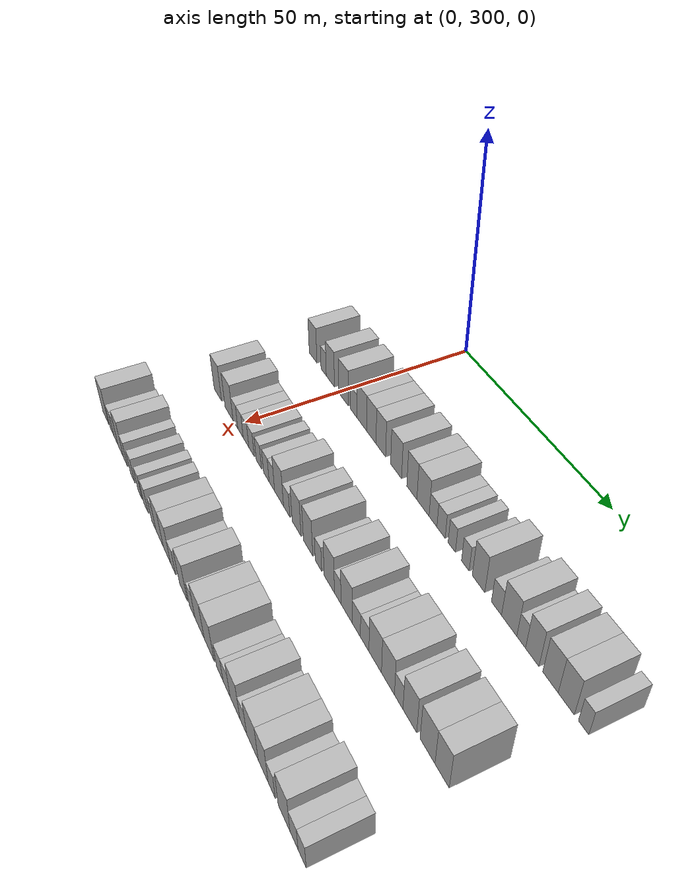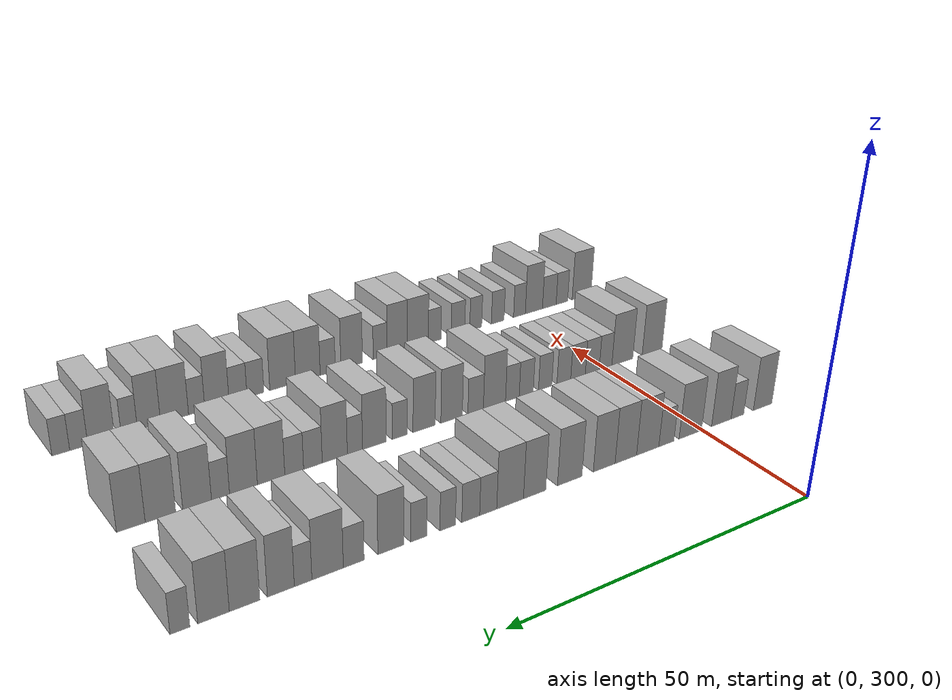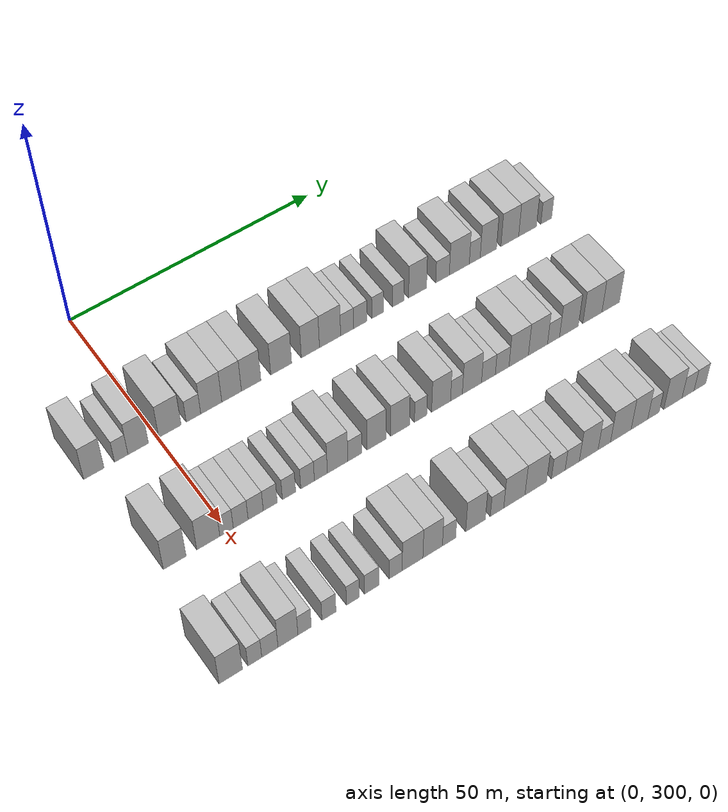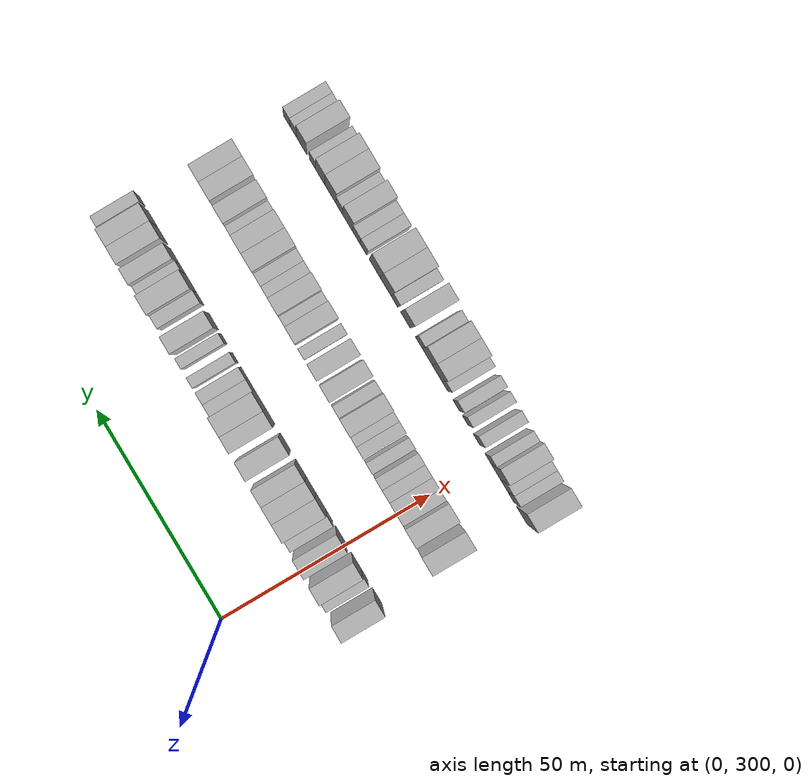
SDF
<sdf version="1.6">
 <world name="default">
  <model name="building_163">
   <static>1</static>
   <pose>25.0000 287.7358 0 0.000000 0.000000 0.000000</pose>
   <link name="link">
    <pose>0 0 4.50 0 0 0</pose>
    <collision name="collision"><geometry><box><size>10.0000 3.8715 9.0000</size></box></geometry></collision>
    <visual name="visual">
     <cast_shadows>0</cast_shadows>
     <geometry><box><size>10.0000 3.8715 9.0000</size></box></geometry>
     <material>
      <script>
       <uri>model://HANNAS_wall/materials/scripts</uri>
       <uri>model://HANNAS_wall/materials/textures</uri>
       <name>vrc/HANNAS_wall</name>
      </script>
     </material>
    </visual>
   </link>
  </model>
  <model name="building_164">
   <static>1</static>
   <pose>25.0000 292.9603 0 0.000000 0.000000 0.000000</pose>
   <link name="link">
    <pose>0 0 3.00 0 0 0</pose>
    <collision name="collision"><geometry><box><size>10.0000 2.5776 6.0000</size></box></geometry></collision>
    <visual name="visual">
     <cast_shadows>0</cast_shadows>
     <geometry><box><size>10.0000 2.5776 6.0000</size></box></geometry>
     <material>
      <script>
       <uri>model://HANNAS_wall/materials/scripts</uri>
       <uri>model://HANNAS_wall/materials/textures</uri>
       <name>vrc/HANNAS_wall</name>
      </script>
     </material>
    </visual>
   </link>
  </model>
  <model name="building_165">
   <static>1</static>
   <pose>25.0000 296.2184 0 0.000000 0.000000 0.000000</pose>
   <link name="link">
    <pose>0 0 4.50 0 0 0</pose>
    <collision name="collision"><geometry><box><size>10.0000 3.9385 9.0000</size></box></geometry></collision>
    <visual name="visual">
     <cast_shadows>0</cast_shadows>
     <geometry><box><size>10.0000 3.9385 9.0000</size></box></geometry>
     <material>
      <script>
       <uri>model://HANNAS_wall/materials/scripts</uri>
       <uri>model://HANNAS_wall/materials/textures</uri>
       <name>vrc/HANNAS_wall</name>
      </script>
     </material>
    </visual>
   </link>
  </model>
  <model name="building_166">
   <static>1</static>
   <pose>25.0000 302.3797 0 0.000000 0.000000 0.000000</pose>
   <link name="link">
    <pose>0 0 4.50 0 0 0</pose>
    <collision name="collision"><geometry><box><size>10.0000 4.3841 9.0000</size></box></geometry></collision>
    <visual name="visual">
     <cast_shadows>0</cast_shadows>
     <geometry><box><size>10.0000 4.3841 9.0000</size></box></geometry>
     <material>
      <script>
       <uri>model://HANNAS_wall/materials/scripts</uri>
       <uri>model://HANNAS_wall/materials/textures</uri>
       <name>vrc/HANNAS_wall</name>
      </script>
     </material>
    </visual>
   </link>
  </model>
  <model name="building_167">
   <static>1</static>
   <pose>25.0000 307.0074 0 0.000000 0.000000 0.000000</pose>
   <link name="link">
    <pose>0 0 3.00 0 0 0</pose>
    <collision name="collision"><geometry><box><size>10.0000 2.8714 6.0000</size></box></geometry></collision>
    <visual name="visual">
     <cast_shadows>0</cast_shadows>
     <geometry><box><size>10.0000 2.8714 6.0000</size></box></geometry>
     <material>
      <script>
       <uri>model://HANNAS_wall/materials/scripts</uri>
       <uri>model://HANNAS_wall/materials/textures</uri>
       <name>vrc/HANNAS_wall</name>
      </script>
     </material>
    </visual>
   </link>
  </model>
  <model name="building_168">
   <static>1</static>
   <pose>25.0000 310.5346 0 0.000000 0.000000 0.000000</pose>
   <link name="link">
    <pose>0 0 4.50 0 0 0</pose>
    <collision name="collision"><geometry><box><size>10.0000 4.1829 9.0000</size></box></geometry></collision>
    <visual name="visual">
     <cast_shadows>0</cast_shadows>
     <geometry><box><size>10.0000 4.1829 9.0000</size></box></geometry>
     <material>
      <script>
       <uri>model://HANNAS_wall/materials/scripts</uri>
       <uri>model://HANNAS_wall/materials/textures</uri>
       <name>vrc/HANNAS_wall</name>
      </script>
     </material>
    </visual>
   </link>
  </model>
  <model name="building_169">
   <static>1</static>
   <pose>25.0000 314.5985 0 0.000000 0.000000 0.000000</pose>
   <link name="link">
    <pose>0 0 4.50 0 0 0</pose>
    <collision name="collision"><geometry><box><size>10.0000 3.9449 9.0000</size></box></geometry></collision>
    <visual name="visual">
     <cast_shadows>0</cast_shadows>
     <geometry><box><size>10.0000 3.9449 9.0000</size></box></geometry>
     <material>
      <script>
       <uri>model://HANNAS_wall/materials/scripts</uri>
       <uri>model://HANNAS_wall/materials/textures</uri>
       <name>vrc/HANNAS_wall</name>
      </script>
     </material>
    </visual>
   </link>
  </model>
  <model name="building_170">
   <static>1</static>
   <pose>25.0000 318.5327 0 0.000000 0.000000 0.000000</pose>
   <link name="link">
    <pose>0 0 4.50 0 0 0</pose>
    <collision name="collision"><geometry><box><size>10.0000 3.9236 9.0000</size></box></geometry></collision>
    <visual name="visual">
     <cast_shadows>0</cast_shadows>
     <geometry><box><size>10.0000 3.9236 9.0000</size></box></geometry>
     <material>
      <script>
       <uri>model://HANNAS_wall/materials/scripts</uri>
       <uri>model://HANNAS_wall/materials/textures</uri>
       <name>vrc/HANNAS_wall</name>
      </script>
     </material>
    </visual>
   </link>
  </model>
  <model name="building_171">
   <static>1</static>
   <pose>25.0000 324.6332 0 0.000000 0.000000 0.000000</pose>
   <link name="link">
    <pose>0 0 4.50 0 0 0</pose>
    <collision name="collision"><geometry><box><size>10.0000 4.2774 9.0000</size></box></geometry></collision>
    <visual name="visual">
     <cast_shadows>0</cast_shadows>
     <geometry><box><size>10.0000 4.2774 9.0000</size></box></geometry>
     <material>
      <script>
       <uri>model://HANNAS_wall/materials/scripts</uri>
       <uri>model://HANNAS_wall/materials/textures</uri>
       <name>vrc/HANNAS_wall</name>
      </script>
     </material>
    </visual>
   </link>
  </model>
  <model name="building_172">
   <static>1</static>
   <pose>25.0000 330.6508 0 0.000000 0.000000 0.000000</pose>
   <link name="link">
    <pose>0 0 4.50 0 0 0</pose>
    <collision name="collision"><geometry><box><size>10.0000 3.7577 9.0000</size></box></geometry></collision>
    <visual name="visual">
     <cast_shadows>0</cast_shadows>
     <geometry><box><size>10.0000 3.7577 9.0000</size></box></geometry>
     <material>
      <script>
       <uri>model://HANNAS_wall/materials/scripts</uri>
       <uri>model://HANNAS_wall/materials/textures</uri>
       <name>vrc/HANNAS_wall</name>
      </script>
     </material>
    </visual>
   </link>
  </model>
  <model name="building_173">
   <static>1</static>
   <pose>25.0000 334.7390 0 0.000000 0.000000 0.000000</pose>
   <link name="link">
    <pose>0 0 4.50 0 0 0</pose>
    <collision name="collision"><geometry><box><size>10.0000 4.4188 9.0000</size></box></geometry></collision>
    <visual name="visual">
     <cast_shadows>0</cast_shadows>
     <geometry><box><size>10.0000 4.4188 9.0000</size></box></geometry>
     <material>
      <script>
       <uri>model://HANNAS_wall/materials/scripts</uri>
       <uri>model://HANNAS_wall/materials/textures</uri>
       <name>vrc/HANNAS_wall</name>
      </script>
     </material>
    </visual>
   </link>
  </model>
  <model name="building_174">
   <static>1</static>
   <pose>25.0000 338.3283 0 0.000000 0.000000 0.000000</pose>
   <link name="link">
    <pose>0 0 3.00 0 0 0</pose>
    <collision name="collision"><geometry><box><size>10.0000 2.7598 6.0000</size></box></geometry></collision>
    <visual name="visual">
     <cast_shadows>0</cast_shadows>
     <geometry><box><size>10.0000 2.7598 6.0000</size></box></geometry>
     <material>
      <script>
       <uri>model://HANNAS_wall/materials/scripts</uri>
       <uri>model://HANNAS_wall/materials/textures</uri>
       <name>vrc/HANNAS_wall</name>
      </script>
     </material>
    </visual>
   </link>
  </model>
  <model name="building_175">
   <static>1</static>
   <pose>25.0000 341.1280 0 0.000000 0.000000 0.000000</pose>
   <link name="link">
    <pose>0 0 3.00 0 0 0</pose>
    <collision name="collision"><geometry><box><size>10.0000 2.8397 6.0000</size></box></geometry></collision>
    <visual name="visual">
     <cast_shadows>0</cast_shadows>
     <geometry><box><size>10.0000 2.8397 6.0000</size></box></geometry>
     <material>
      <script>
       <uri>model://HANNAS_wall/materials/scripts</uri>
       <uri>model://HANNAS_wall/materials/textures</uri>
       <name>vrc/HANNAS_wall</name>
      </script>
     </material>
    </visual>
   </link>
  </model>
  <model name="building_176">
   <static>1</static>
   <pose>25.0000 344.7633 0 0.000000 0.000000 0.000000</pose>
   <link name="link">
    <pose>0 0 3.00 0 0 0</pose>
    <collision name="collision"><geometry><box><size>10.0000 2.4307 6.0000</size></box></geometry></collision>
    <visual name="visual">
     <cast_shadows>0</cast_shadows>
     <geometry><box><size>10.0000 2.4307 6.0000</size></box></geometry>
     <material>
      <script>
       <uri>model://HANNAS_wall/materials/scripts</uri>
       <uri>model://HANNAS_wall/materials/textures</uri>
       <name>vrc/HANNAS_wall</name>
      </script>
     </material>
    </visual>
   </link>
  </model>
  <model name="building_177">
   <static>1</static>
   <pose>25.0000 349.2071 0 0.000000 0.000000 0.000000</pose>
   <link name="link">
    <pose>0 0 3.00 0 0 0</pose>
    <collision name="collision"><geometry><box><size>10.0000 2.4570 6.0000</size></box></geometry></collision>
    <visual name="visual">
     <cast_shadows>0</cast_shadows>
     <geometry><box><size>10.0000 2.4570 6.0000</size></box></geometry>
     <material>
      <script>
       <uri>model://HANNAS_wall/materials/scripts</uri>
       <uri>model://HANNAS_wall/materials/textures</uri>
       <name>vrc/HANNAS_wall</name>
      </script>
     </material>
    </visual>
   </link>
  </model>
  <model name="building_178">
   <static>1</static>
   <pose>25.0000 353.3853 0 0.000000 0.000000 0.000000</pose>
   <link name="link">
    <pose>0 0 4.50 0 0 0</pose>
    <collision name="collision"><geometry><box><size>10.0000 3.8993 9.0000</size></box></geometry></collision>
    <visual name="visual">
     <cast_shadows>0</cast_shadows>
     <geometry><box><size>10.0000 3.8993 9.0000</size></box></geometry>
     <material>
      <script>
       <uri>model://HANNAS_wall/materials/scripts</uri>
       <uri>model://HANNAS_wall/materials/textures</uri>
       <name>vrc/HANNAS_wall</name>
      </script>
     </material>
    </visual>
   </link>
  </model>
  <model name="building_179">
   <static>1</static>
   <pose>25.0000 358.8305 0 0.000000 0.000000 0.000000</pose>
   <link name="link">
    <pose>0 0 3.00 0 0 0</pose>
    <collision name="collision"><geometry><box><size>10.0000 2.9913 6.0000</size></box></geometry></collision>
    <visual name="visual">
     <cast_shadows>0</cast_shadows>
     <geometry><box><size>10.0000 2.9913 6.0000</size></box></geometry>
     <material>
      <script>
       <uri>model://HANNAS_wall/materials/scripts</uri>
       <uri>model://HANNAS_wall/materials/textures</uri>
       <name>vrc/HANNAS_wall</name>
      </script>
     </material>
    </visual>
   </link>
  </model>
  <model name="building_180">
   <static>1</static>
   <pose>25.0000 362.5375 0 0.000000 0.000000 0.000000</pose>
   <link name="link">
    <pose>0 0 4.50 0 0 0</pose>
    <collision name="collision"><geometry><box><size>10.0000 4.4227 9.0000</size></box></geometry></collision>
    <visual name="visual">
     <cast_shadows>0</cast_shadows>
     <geometry><box><size>10.0000 4.4227 9.0000</size></box></geometry>
     <material>
      <script>
       <uri>model://HANNAS_wall/materials/scripts</uri>
       <uri>model://HANNAS_wall/materials/textures</uri>
       <name>vrc/HANNAS_wall</name>
      </script>
     </material>
    </visual>
   </link>
  </model>
  <model name="building_181">
   <static>1</static>
   <pose>25.0000 365.9593 0 0.000000 0.000000 0.000000</pose>
   <link name="link">
    <pose>0 0 3.00 0 0 0</pose>
    <collision name="collision"><geometry><box><size>10.0000 2.4209 6.0000</size></box></geometry></collision>
    <visual name="visual">
     <cast_shadows>0</cast_shadows>
     <geometry><box><size>10.0000 2.4209 6.0000</size></box></geometry>
     <material>
      <script>
       <uri>model://HANNAS_wall/materials/scripts</uri>
       <uri>model://HANNAS_wall/materials/textures</uri>
       <name>vrc/HANNAS_wall</name>
      </script>
     </material>
    </visual>
   </link>
  </model>
  <model name="building_182">
   <static>1</static>
   <pose>25.0000 368.9951 0 0.000000 0.000000 0.000000</pose>
   <link name="link">
    <pose>0 0 4.50 0 0 0</pose>
    <collision name="collision"><geometry><box><size>10.0000 3.6508 9.0000</size></box></geometry></collision>
    <visual name="visual">
     <cast_shadows>0</cast_shadows>
     <geometry><box><size>10.0000 3.6508 9.0000</size></box></geometry>
     <material>
      <script>
       <uri>model://HANNAS_wall/materials/scripts</uri>
       <uri>model://HANNAS_wall/materials/textures</uri>
       <name>vrc/HANNAS_wall</name>
      </script>
     </material>
    </visual>
   </link>
  </model>
  <model name="building_183">
   <static>1</static>
   <pose>25.0000 373.8278 0 0.000000 0.000000 0.000000</pose>
   <link name="link">
    <pose>0 0 4.50 0 0 0</pose>
    <collision name="collision"><geometry><box><size>10.0000 4.0145 9.0000</size></box></geometry></collision>
    <visual name="visual">
     <cast_shadows>0</cast_shadows>
     <geometry><box><size>10.0000 4.0145 9.0000</size></box></geometry>
     <material>
      <script>
       <uri>model://HANNAS_wall/materials/scripts</uri>
       <uri>model://HANNAS_wall/materials/textures</uri>
       <name>vrc/HANNAS_wall</name>
      </script>
     </material>
    </visual>
   </link>
  </model>
  <model name="building_184">
   <static>1</static>
   <pose>25.0000 377.8586 0 0.000000 0.000000 0.000000</pose>
   <link name="link">
    <pose>0 0 4.50 0 0 0</pose>
    <collision name="collision"><geometry><box><size>10.0000 4.0471 9.0000</size></box></geometry></collision>
    <visual name="visual">
     <cast_shadows>0</cast_shadows>
     <geometry><box><size>10.0000 4.0471 9.0000</size></box></geometry>
     <material>
      <script>
       <uri>model://HANNAS_wall/materials/scripts</uri>
       <uri>model://HANNAS_wall/materials/textures</uri>
       <name>vrc/HANNAS_wall</name>
      </script>
     </material>
    </visual>
   </link>
  </model>
  <model name="building_185">
   <static>1</static>
   <pose>25.0000 382.1247 0 0.000000 0.000000 0.000000</pose>
   <link name="link">
    <pose>0 0 3.00 0 0 0</pose>
    <collision name="collision"><geometry><box><size>10.0000 2.4851 6.0000</size></box></geometry></collision>
    <visual name="visual">
     <cast_shadows>0</cast_shadows>
     <geometry><box><size>10.0000 2.4851 6.0000</size></box></geometry>
     <material>
      <script>
       <uri>model://HANNAS_wall/materials/scripts</uri>
       <uri>model://HANNAS_wall/materials/textures</uri>
       <name>vrc/HANNAS_wall</name>
      </script>
     </material>
    </visual>
   </link>
  </model>
  <model name="building_336">
   <static>1</static>
   <pose>47.0000 289.9928 0 0.000000 0.000000 0.000000</pose>
   <link name="link">
    <pose>0 0 4.50 0 0 0</pose>
    <collision name="collision"><geometry><box><size>10.0000 4.2523 9.0000</size></box></geometry></collision>
    <visual name="visual">
     <cast_shadows>0</cast_shadows>
     <geometry><box><size>10.0000 4.2523 9.0000</size></box></geometry>
     <material>
      <script>
       <uri>model://HANNAS_wall/materials/scripts</uri>
       <uri>model://HANNAS_wall/materials/textures</uri>
       <name>vrc/HANNAS_wall</name>
      </script>
     </material>
    </visual>
   </link>
  </model>
  <model name="building_337">
   <static>1</static>
   <pose>47.0000 296.3022 0 0.000000 0.000000 0.000000</pose>
   <link name="link">
    <pose>0 0 4.50 0 0 0</pose>
    <collision name="collision"><geometry><box><size>10.0000 4.3664 9.0000</size></box></geometry></collision>
    <visual name="visual">
     <cast_shadows>0</cast_shadows>
     <geometry><box><size>10.0000 4.3664 9.0000</size></box></geometry>
     <material>
      <script>
       <uri>model://HANNAS_wall/materials/scripts</uri>
       <uri>model://HANNAS_wall/materials/textures</uri>
       <name>vrc/HANNAS_wall</name>
      </script>
     </material>
    </visual>
   </link>
  </model>
  <model name="building_338">
   <static>1</static>
   <pose>47.0000 299.7753 0 0.000000 0.000000 0.000000</pose>
   <link name="link">
    <pose>0 0 3.00 0 0 0</pose>
    <collision name="collision"><geometry><box><size>10.0000 2.5800 6.0000</size></box></geometry></collision>
    <visual name="visual">
     <cast_shadows>0</cast_shadows>
     <geometry><box><size>10.0000 2.5800 6.0000</size></box></geometry>
     <material>
      <script>
       <uri>model://HANNAS_wall/materials/scripts</uri>
       <uri>model://HANNAS_wall/materials/textures</uri>
       <name>vrc/HANNAS_wall</name>
      </script>
     </material>
    </visual>
   </link>
  </model>
  <model name="building_339">
   <static>1</static>
   <pose>47.0000 302.4813 0 0.000000 0.000000 0.000000</pose>
   <link name="link">
    <pose>0 0 3.00 0 0 0</pose>
    <collision name="collision"><geometry><box><size>10.0000 2.8320 6.0000</size></box></geometry></collision>
    <visual name="visual">
     <cast_shadows>0</cast_shadows>
     <geometry><box><size>10.0000 2.8320 6.0000</size></box></geometry>
     <material>
      <script>
       <uri>model://HANNAS_wall/materials/scripts</uri>
       <uri>model://HANNAS_wall/materials/textures</uri>
       <name>vrc/HANNAS_wall</name>
      </script>
     </material>
    </visual>
   </link>
  </model>
  <model name="building_340">
   <static>1</static>
   <pose>47.0000 305.3568 0 0.000000 0.000000 0.000000</pose>
   <link name="link">
    <pose>0 0 3.00 0 0 0</pose>
    <collision name="collision"><geometry><box><size>10.0000 2.9190 6.0000</size></box></geometry></collision>
    <visual name="visual">
     <cast_shadows>0</cast_shadows>
     <geometry><box><size>10.0000 2.9190 6.0000</size></box></geometry>
     <material>
      <script>
       <uri>model://HANNAS_wall/materials/scripts</uri>
       <uri>model://HANNAS_wall/materials/textures</uri>
       <name>vrc/HANNAS_wall</name>
      </script>
     </material>
    </visual>
   </link>
  </model>
  <model name="building_341">
   <static>1</static>
   <pose>47.0000 308.1764 0 0.000000 0.000000 0.000000</pose>
   <link name="link">
    <pose>0 0 3.00 0 0 0</pose>
    <collision name="collision"><geometry><box><size>10.0000 2.7201 6.0000</size></box></geometry></collision>
    <visual name="visual">
     <cast_shadows>0</cast_shadows>
     <geometry><box><size>10.0000 2.7201 6.0000</size></box></geometry>
     <material>
      <script>
       <uri>model://HANNAS_wall/materials/scripts</uri>
       <uri>model://HANNAS_wall/materials/textures</uri>
       <name>vrc/HANNAS_wall</name>
      </script>
     </material>
    </visual>
   </link>
  </model>
  <model name="building_342">
   <static>1</static>
   <pose>47.0000 311.8334 0 0.000000 0.000000 0.000000</pose>
   <link name="link">
    <pose>0 0 3.00 0 0 0</pose>
    <collision name="collision"><geometry><box><size>10.0000 2.5940 6.0000</size></box></geometry></collision>
    <visual name="visual">
     <cast_shadows>0</cast_shadows>
     <geometry><box><size>10.0000 2.5940 6.0000</size></box></geometry>
     <material>
      <script>
       <uri>model://HANNAS_wall/materials/scripts</uri>
       <uri>model://HANNAS_wall/materials/textures</uri>
       <name>vrc/HANNAS_wall</name>
      </script>
     </material>
    </visual>
   </link>
  </model>
  <model name="building_343">
   <static>1</static>
   <pose>47.0000 315.4722 0 0.000000 0.000000 0.000000</pose>
   <link name="link">
    <pose>0 0 3.00 0 0 0</pose>
    <collision name="collision"><geometry><box><size>10.0000 2.6835 6.0000</size></box></geometry></collision>
    <visual name="visual">
     <cast_shadows>0</cast_shadows>
     <geometry><box><size>10.0000 2.6835 6.0000</size></box></geometry>
     <material>
      <script>
       <uri>model://HANNAS_wall/materials/scripts</uri>
       <uri>model://HANNAS_wall/materials/textures</uri>
       <name>vrc/HANNAS_wall</name>
      </script>
     </material>
    </visual>
   </link>
  </model>
  <model name="building_344">
   <static>1</static>
   <pose>47.0000 318.1032 0 0.000000 0.000000 0.000000</pose>
   <link name="link">
    <pose>0 0 3.00 0 0 0</pose>
    <collision name="collision"><geometry><box><size>10.0000 2.5786 6.0000</size></box></geometry></collision>
    <visual name="visual">
     <cast_shadows>0</cast_shadows>
     <geometry><box><size>10.0000 2.5786 6.0000</size></box></geometry>
     <material>
      <script>
       <uri>model://HANNAS_wall/materials/scripts</uri>
       <uri>model://HANNAS_wall/materials/textures</uri>
       <name>vrc/HANNAS_wall</name>
      </script>
     </material>
    </visual>
   </link>
  </model>
  <model name="building_345">
   <static>1</static>
   <pose>47.0000 321.4403 0 0.000000 0.000000 0.000000</pose>
   <link name="link">
    <pose>0 0 4.50 0 0 0</pose>
    <collision name="collision"><geometry><box><size>10.0000 4.0956 9.0000</size></box></geometry></collision>
    <visual name="visual">
     <cast_shadows>0</cast_shadows>
     <geometry><box><size>10.0000 4.0956 9.0000</size></box></geometry>
     <material>
      <script>
       <uri>model://HANNAS_wall/materials/scripts</uri>
       <uri>model://HANNAS_wall/materials/textures</uri>
       <name>vrc/HANNAS_wall</name>
      </script>
     </material>
    </visual>
   </link>
  </model>
  <model name="building_346">
   <static>1</static>
   <pose>47.0000 324.9030 0 0.000000 0.000000 0.000000</pose>
   <link name="link">
    <pose>0 0 3.00 0 0 0</pose>
    <collision name="collision"><geometry><box><size>10.0000 2.8297 6.0000</size></box></geometry></collision>
    <visual name="visual">
     <cast_shadows>0</cast_shadows>
     <geometry><box><size>10.0000 2.8297 6.0000</size></box></geometry>
     <material>
      <script>
       <uri>model://HANNAS_wall/materials/scripts</uri>
       <uri>model://HANNAS_wall/materials/textures</uri>
       <name>vrc/HANNAS_wall</name>
      </script>
     </material>
    </visual>
   </link>
  </model>
  <model name="building_347">
   <static>1</static>
   <pose>47.0000 329.2350 0 0.000000 0.000000 0.000000</pose>
   <link name="link">
    <pose>0 0 4.50 0 0 0</pose>
    <collision name="collision"><geometry><box><size>10.0000 3.8344 9.0000</size></box></geometry></collision>
    <visual name="visual">
     <cast_shadows>0</cast_shadows>
     <geometry><box><size>10.0000 3.8344 9.0000</size></box></geometry>
     <material>
      <script>
       <uri>model://HANNAS_wall/materials/scripts</uri>
       <uri>model://HANNAS_wall/materials/textures</uri>
       <name>vrc/HANNAS_wall</name>
      </script>
     </material>
    </visual>
   </link>
  </model>
  <model name="building_348">
   <static>1</static>
   <pose>47.0000 334.0845 0 0.000000 0.000000 0.000000</pose>
   <link name="link">
    <pose>0 0 4.50 0 0 0</pose>
    <collision name="collision"><geometry><box><size>10.0000 3.8646 9.0000</size></box></geometry></collision>
    <visual name="visual">
     <cast_shadows>0</cast_shadows>
     <geometry><box><size>10.0000 3.8646 9.0000</size></box></geometry>
     <material>
      <script>
       <uri>model://HANNAS_wall/materials/scripts</uri>
       <uri>model://HANNAS_wall/materials/textures</uri>
       <name>vrc/HANNAS_wall</name>
      </script>
     </material>
    </visual>
   </link>
  </model>
  <model name="building_349">
   <static>1</static>
   <pose>47.0000 338.2983 0 0.000000 0.000000 0.000000</pose>
   <link name="link">
    <pose>0 0 3.00 0 0 0</pose>
    <collision name="collision"><geometry><box><size>10.0000 2.5630 6.0000</size></box></geometry></collision>
    <visual name="visual">
     <cast_shadows>0</cast_shadows>
     <geometry><box><size>10.0000 2.5630 6.0000</size></box></geometry>
     <material>
      <script>
       <uri>model://HANNAS_wall/materials/scripts</uri>
       <uri>model://HANNAS_wall/materials/textures</uri>
       <name>vrc/HANNAS_wall</name>
      </script>
     </material>
    </visual>
   </link>
  </model>
  <model name="building_350">
   <static>1</static>
   <pose>47.0000 342.5559 0 0.000000 0.000000 0.000000</pose>
   <link name="link">
    <pose>0 0 4.50 0 0 0</pose>
    <collision name="collision"><geometry><box><size>10.0000 3.9523 9.0000</size></box></geometry></collision>
    <visual name="visual">
     <cast_shadows>0</cast_shadows>
     <geometry><box><size>10.0000 3.9523 9.0000</size></box></geometry>
     <material>
      <script>
       <uri>model://HANNAS_wall/materials/scripts</uri>
       <uri>model://HANNAS_wall/materials/textures</uri>
       <name>vrc/HANNAS_wall</name>
      </script>
     </material>
    </visual>
   </link>
  </model>
  <model name="building_351">
   <static>1</static>
   <pose>47.0000 345.7799 0 0.000000 0.000000 0.000000</pose>
   <link name="link">
    <pose>0 0 3.00 0 0 0</pose>
    <collision name="collision"><geometry><box><size>10.0000 2.4957 6.0000</size></box></geometry></collision>
    <visual name="visual">
     <cast_shadows>0</cast_shadows>
     <geometry><box><size>10.0000 2.4957 6.0000</size></box></geometry>
     <material>
      <script>
       <uri>model://HANNAS_wall/materials/scripts</uri>
       <uri>model://HANNAS_wall/materials/textures</uri>
       <name>vrc/HANNAS_wall</name>
      </script>
     </material>
    </visual>
   </link>
  </model>
  <model name="building_352">
   <static>1</static>
   <pose>47.0000 349.0492 0 0.000000 0.000000 0.000000</pose>
   <link name="link">
    <pose>0 0 4.50 0 0 0</pose>
    <collision name="collision"><geometry><box><size>10.0000 4.0430 9.0000</size></box></geometry></collision>
    <visual name="visual">
     <cast_shadows>0</cast_shadows>
     <geometry><box><size>10.0000 4.0430 9.0000</size></box></geometry>
     <material>
      <script>
       <uri>model://HANNAS_wall/materials/scripts</uri>
       <uri>model://HANNAS_wall/materials/textures</uri>
       <name>vrc/HANNAS_wall</name>
      </script>
     </material>
    </visual>
   </link>
  </model>
  <model name="building_353">
   <static>1</static>
   <pose>47.0000 352.5483 0 0.000000 0.000000 0.000000</pose>
   <link name="link">
    <pose>0 0 3.00 0 0 0</pose>
    <collision name="collision"><geometry><box><size>10.0000 2.9553 6.0000</size></box></geometry></collision>
    <visual name="visual">
     <cast_shadows>0</cast_shadows>
     <geometry><box><size>10.0000 2.9553 6.0000</size></box></geometry>
     <material>
      <script>
       <uri>model://HANNAS_wall/materials/scripts</uri>
       <uri>model://HANNAS_wall/materials/textures</uri>
       <name>vrc/HANNAS_wall</name>
      </script>
     </material>
    </visual>
   </link>
  </model>
  <model name="building_354">
   <static>1</static>
   <pose>47.0000 355.4924 0 0.000000 0.000000 0.000000</pose>
   <link name="link">
    <pose>0 0 3.00 0 0 0</pose>
    <collision name="collision"><geometry><box><size>10.0000 2.9328 6.0000</size></box></geometry></collision>
    <visual name="visual">
     <cast_shadows>0</cast_shadows>
     <geometry><box><size>10.0000 2.9328 6.0000</size></box></geometry>
     <material>
      <script>
       <uri>model://HANNAS_wall/materials/scripts</uri>
       <uri>model://HANNAS_wall/materials/textures</uri>
       <name>vrc/HANNAS_wall</name>
      </script>
     </material>
    </visual>
   </link>
  </model>
  <model name="building_355">
   <static>1</static>
   <pose>47.0000 359.0555 0 0.000000 0.000000 0.000000</pose>
   <link name="link">
    <pose>0 0 4.50 0 0 0</pose>
    <collision name="collision"><geometry><box><size>10.0000 4.1934 9.0000</size></box></geometry></collision>
    <visual name="visual">
     <cast_shadows>0</cast_shadows>
     <geometry><box><size>10.0000 4.1934 9.0000</size></box></geometry>
     <material>
      <script>
       <uri>model://HANNAS_wall/materials/scripts</uri>
       <uri>model://HANNAS_wall/materials/textures</uri>
       <name>vrc/HANNAS_wall</name>
      </script>
     </material>
    </visual>
   </link>
  </model>
  <model name="building_356">
   <static>1</static>
   <pose>47.0000 363.2369 0 0.000000 0.000000 0.000000</pose>
   <link name="link">
    <pose>0 0 4.50 0 0 0</pose>
    <collision name="collision"><geometry><box><size>10.0000 4.1695 9.0000</size></box></geometry></collision>
    <visual name="visual">
     <cast_shadows>0</cast_shadows>
     <geometry><box><size>10.0000 4.1695 9.0000</size></box></geometry>
     <material>
      <script>
       <uri>model://HANNAS_wall/materials/scripts</uri>
       <uri>model://HANNAS_wall/materials/textures</uri>
       <name>vrc/HANNAS_wall</name>
      </script>
     </material>
    </visual>
   </link>
  </model>
  <model name="building_357">
   <static>1</static>
   <pose>47.0000 366.6477 0 0.000000 0.000000 0.000000</pose>
   <link name="link">
    <pose>0 0 3.00 0 0 0</pose>
    <collision name="collision"><geometry><box><size>10.0000 2.6521 6.0000</size></box></geometry></collision>
    <visual name="visual">
     <cast_shadows>0</cast_shadows>
     <geometry><box><size>10.0000 2.6521 6.0000</size></box></geometry>
     <material>
      <script>
       <uri>model://HANNAS_wall/materials/scripts</uri>
       <uri>model://HANNAS_wall/materials/textures</uri>
       <name>vrc/HANNAS_wall</name>
      </script>
     </material>
    </visual>
   </link>
  </model>
  <model name="building_358">
   <static>1</static>
   <pose>47.0000 370.0489 0 0.000000 0.000000 0.000000</pose>
   <link name="link">
    <pose>0 0 4.50 0 0 0</pose>
    <collision name="collision"><geometry><box><size>10.0000 4.1504 9.0000</size></box></geometry></collision>
    <visual name="visual">
     <cast_shadows>0</cast_shadows>
     <geometry><box><size>10.0000 4.1504 9.0000</size></box></geometry>
     <material>
      <script>
       <uri>model://HANNAS_wall/materials/scripts</uri>
       <uri>model://HANNAS_wall/materials/textures</uri>
       <name>vrc/HANNAS_wall</name>
      </script>
     </material>
    </visual>
   </link>
  </model>
  <model name="building_359">
   <static>1</static>
   <pose>47.0000 375.2617 0 0.000000 0.000000 0.000000</pose>
   <link name="link">
    <pose>0 0 4.50 0 0 0</pose>
    <collision name="collision"><geometry><box><size>10.0000 4.2751 9.0000</size></box></geometry></collision>
    <visual name="visual">
     <cast_shadows>0</cast_shadows>
     <geometry><box><size>10.0000 4.2751 9.0000</size></box></geometry>
     <material>
      <script>
       <uri>model://HANNAS_wall/materials/scripts</uri>
       <uri>model://HANNAS_wall/materials/textures</uri>
       <name>vrc/HANNAS_wall</name>
      </script>
     </material>
    </visual>
   </link>
  </model>
  <model name="building_360">
   <static>1</static>
   <pose>47.0000 379.3709 0 0.000000 0.000000 0.000000</pose>
   <link name="link">
    <pose>0 0 4.50 0 0 0</pose>
    <collision name="collision"><geometry><box><size>10.0000 3.9434 9.0000</size></box></geometry></collision>
    <visual name="visual">
     <cast_shadows>0</cast_shadows>
     <geometry><box><size>10.0000 3.9434 9.0000</size></box></geometry>
     <material>
      <script>
       <uri>model://HANNAS_wall/materials/scripts</uri>
       <uri>model://HANNAS_wall/materials/textures</uri>
       <name>vrc/HANNAS_wall</name>
      </script>
     </material>
    </visual>
   </link>
  </model>
  <model name="building_528">
   <static>1</static>
   <pose>69.0000 286.7147 0 0.000000 0.000000 0.000000</pose>
   <link name="link">
    <pose>0 0 4.50 0 0 0</pose>
    <collision name="collision"><geometry><box><size>10.0000 4.2573 9.0000</size></box></geometry></collision>
    <visual name="visual">
     <cast_shadows>0</cast_shadows>
     <geometry><box><size>10.0000 4.2573 9.0000</size></box></geometry>
     <material>
      <script>
       <uri>model://HANNAS_wall/materials/scripts</uri>
       <uri>model://HANNAS_wall/materials/textures</uri>
       <name>vrc/HANNAS_wall</name>
      </script>
     </material>
    </visual>
   </link>
  </model>
  <model name="building_529">
   <static>1</static>
   <pose>69.0000 291.1139 0 0.000000 0.000000 0.000000</pose>
   <link name="link">
    <pose>0 0 3.00 0 0 0</pose>
    <collision name="collision"><geometry><box><size>10.0000 2.5410 6.0000</size></box></geometry></collision>
    <visual name="visual">
     <cast_shadows>0</cast_shadows>
     <geometry><box><size>10.0000 2.5410 6.0000</size></box></geometry>
     <material>
      <script>
       <uri>model://HANNAS_wall/materials/scripts</uri>
       <uri>model://HANNAS_wall/materials/textures</uri>
       <name>vrc/HANNAS_wall</name>
      </script>
     </material>
    </visual>
   </link>
  </model>
  <model name="building_530">
   <static>1</static>
   <pose>69.0000 293.8782 0 0.000000 0.000000 0.000000</pose>
   <link name="link">
    <pose>0 0 3.00 0 0 0</pose>
    <collision name="collision"><geometry><box><size>10.0000 2.9876 6.0000</size></box></geometry></collision>
    <visual name="visual">
     <cast_shadows>0</cast_shadows>
     <geometry><box><size>10.0000 2.9876 6.0000</size></box></geometry>
     <material>
      <script>
       <uri>model://HANNAS_wall/materials/scripts</uri>
       <uri>model://HANNAS_wall/materials/textures</uri>
       <name>vrc/HANNAS_wall</name>
      </script>
     </material>
    </visual>
   </link>
  </model>
  <model name="building_531">
   <static>1</static>
   <pose>69.0000 297.2229 0 0.000000 0.000000 0.000000</pose>
   <link name="link">
    <pose>0 0 4.50 0 0 0</pose>
    <collision name="collision"><geometry><box><size>10.0000 3.7018 9.0000</size></box></geometry></collision>
    <visual name="visual">
     <cast_shadows>0</cast_shadows>
     <geometry><box><size>10.0000 3.7018 9.0000</size></box></geometry>
     <material>
      <script>
       <uri>model://HANNAS_wall/materials/scripts</uri>
       <uri>model://HANNAS_wall/materials/textures</uri>
       <name>vrc/HANNAS_wall</name>
      </script>
     </material>
    </visual>
   </link>
  </model>
  <model name="building_532">
   <static>1</static>
   <pose>69.0000 300.3249 0 0.000000 0.000000 0.000000</pose>
   <link name="link">
    <pose>0 0 3.00 0 0 0</pose>
    <collision name="collision"><geometry><box><size>10.0000 2.5023 6.0000</size></box></geometry></collision>
    <visual name="visual">
     <cast_shadows>0</cast_shadows>
     <geometry><box><size>10.0000 2.5023 6.0000</size></box></geometry>
     <material>
      <script>
       <uri>model://HANNAS_wall/materials/scripts</uri>
       <uri>model://HANNAS_wall/materials/textures</uri>
       <name>vrc/HANNAS_wall</name>
      </script>
     </material>
    </visual>
   </link>
  </model>
  <model name="building_533">
   <static>1</static>
   <pose>69.0000 304.9008 0 0.000000 0.000000 0.000000</pose>
   <link name="link">
    <pose>0 0 3.00 0 0 0</pose>
    <collision name="collision"><geometry><box><size>10.0000 2.6495 6.0000</size></box></geometry></collision>
    <visual name="visual">
     <cast_shadows>0</cast_shadows>
     <geometry><box><size>10.0000 2.6495 6.0000</size></box></geometry>
     <material>
      <script>
       <uri>model://HANNAS_wall/materials/scripts</uri>
       <uri>model://HANNAS_wall/materials/textures</uri>
       <name>vrc/HANNAS_wall</name>
      </script>
     </material>
    </visual>
   </link>
  </model>
  <model name="building_534">
   <static>1</static>
   <pose>69.0000 309.4505 0 0.000000 0.000000 0.000000</pose>
   <link name="link">
    <pose>0 0 3.00 0 0 0</pose>
    <collision name="collision"><geometry><box><size>10.0000 2.4501 6.0000</size></box></geometry></collision>
    <visual name="visual">
     <cast_shadows>0</cast_shadows>
     <geometry><box><size>10.0000 2.4501 6.0000</size></box></geometry>
     <material>
      <script>
       <uri>model://HANNAS_wall/materials/scripts</uri>
       <uri>model://HANNAS_wall/materials/textures</uri>
       <name>vrc/HANNAS_wall</name>
      </script>
     </material>
    </visual>
   </link>
  </model>
  <model name="building_535">
   <static>1</static>
   <pose>69.0000 313.0483 0 0.000000 0.000000 0.000000</pose>
   <link name="link">
    <pose>0 0 3.00 0 0 0</pose>
    <collision name="collision"><geometry><box><size>10.0000 2.7454 6.0000</size></box></geometry></collision>
    <visual name="visual">
     <cast_shadows>0</cast_shadows>
     <geometry><box><size>10.0000 2.7454 6.0000</size></box></geometry>
     <material>
      <script>
       <uri>model://HANNAS_wall/materials/scripts</uri>
       <uri>model://HANNAS_wall/materials/textures</uri>
       <name>vrc/HANNAS_wall</name>
      </script>
     </material>
    </visual>
   </link>
  </model>
  <model name="building_536">
   <static>1</static>
   <pose>69.0000 317.6810 0 0.000000 0.000000 0.000000</pose>
   <link name="link">
    <pose>0 0 3.00 0 0 0</pose>
    <collision name="collision"><geometry><box><size>10.0000 2.5200 6.0000</size></box></geometry></collision>
    <visual name="visual">
     <cast_shadows>0</cast_shadows>
     <geometry><box><size>10.0000 2.5200 6.0000</size></box></geometry>
     <material>
      <script>
       <uri>model://HANNAS_wall/materials/scripts</uri>
       <uri>model://HANNAS_wall/materials/textures</uri>
       <name>vrc/HANNAS_wall</name>
      </script>
     </material>
    </visual>
   </link>
  </model>
  <model name="building_537">
   <static>1</static>
   <pose>69.0000 320.9776 0 0.000000 0.000000 0.000000</pose>
   <link name="link">
    <pose>0 0 4.50 0 0 0</pose>
    <collision name="collision"><geometry><box><size>10.0000 4.0733 9.0000</size></box></geometry></collision>
    <visual name="visual">
     <cast_shadows>0</cast_shadows>
     <geometry><box><size>10.0000 4.0733 9.0000</size></box></geometry>
     <material>
      <script>
       <uri>model://HANNAS_wall/materials/scripts</uri>
       <uri>model://HANNAS_wall/materials/textures</uri>
       <name>vrc/HANNAS_wall</name>
      </script>
     </material>
    </visual>
   </link>
  </model>
  <model name="building_538">
   <static>1</static>
   <pose>69.0000 324.9464 0 0.000000 0.000000 0.000000</pose>
   <link name="link">
    <pose>0 0 4.50 0 0 0</pose>
    <collision name="collision"><geometry><box><size>10.0000 3.8642 9.0000</size></box></geometry></collision>
    <visual name="visual">
     <cast_shadows>0</cast_shadows>
     <geometry><box><size>10.0000 3.8642 9.0000</size></box></geometry>
     <material>
      <script>
       <uri>model://HANNAS_wall/materials/scripts</uri>
       <uri>model://HANNAS_wall/materials/textures</uri>
       <name>vrc/HANNAS_wall</name>
      </script>
     </material>
    </visual>
   </link>
  </model>
  <model name="building_539">
   <static>1</static>
   <pose>69.0000 328.1982 0 0.000000 0.000000 0.000000</pose>
   <link name="link">
    <pose>0 0 3.00 0 0 0</pose>
    <collision name="collision"><geometry><box><size>10.0000 2.6395 6.0000</size></box></geometry></collision>
    <visual name="visual">
     <cast_shadows>0</cast_shadows>
     <geometry><box><size>10.0000 2.6395 6.0000</size></box></geometry>
     <material>
      <script>
       <uri>model://HANNAS_wall/materials/scripts</uri>
       <uri>model://HANNAS_wall/materials/textures</uri>
       <name>vrc/HANNAS_wall</name>
      </script>
     </material>
    </visual>
   </link>
  </model>
  <model name="building_540">
   <static>1</static>
   <pose>69.0000 333.5000 0 0.000000 0.000000 0.000000</pose>
   <link name="link">
    <pose>0 0 4.50 0 0 0</pose>
    <collision name="collision"><geometry><box><size>10.0000 3.9641 9.0000</size></box></geometry></collision>
    <visual name="visual">
     <cast_shadows>0</cast_shadows>
     <geometry><box><size>10.0000 3.9641 9.0000</size></box></geometry>
     <material>
      <script>
       <uri>model://HANNAS_wall/materials/scripts</uri>
       <uri>model://HANNAS_wall/materials/textures</uri>
       <name>vrc/HANNAS_wall</name>
      </script>
     </material>
    </visual>
   </link>
  </model>
  <model name="building_541">
   <static>1</static>
   <pose>69.0000 337.8477 0 0.000000 0.000000 0.000000</pose>
   <link name="link">
    <pose>0 0 3.00 0 0 0</pose>
    <collision name="collision"><geometry><box><size>10.0000 2.7314 6.0000</size></box></geometry></collision>
    <visual name="visual">
     <cast_shadows>0</cast_shadows>
     <geometry><box><size>10.0000 2.7314 6.0000</size></box></geometry>
     <material>
      <script>
       <uri>model://HANNAS_wall/materials/scripts</uri>
       <uri>model://HANNAS_wall/materials/textures</uri>
       <name>vrc/HANNAS_wall</name>
      </script>
     </material>
    </visual>
   </link>
  </model>
  <model name="building_542">
   <static>1</static>
   <pose>69.0000 341.3892 0 0.000000 0.000000 0.000000</pose>
   <link name="link">
    <pose>0 0 4.50 0 0 0</pose>
    <collision name="collision"><geometry><box><size>10.0000 4.3516 9.0000</size></box></geometry></collision>
    <visual name="visual">
     <cast_shadows>0</cast_shadows>
     <geometry><box><size>10.0000 4.3516 9.0000</size></box></geometry>
     <material>
      <script>
       <uri>model://HANNAS_wall/materials/scripts</uri>
       <uri>model://HANNAS_wall/materials/textures</uri>
       <name>vrc/HANNAS_wall</name>
      </script>
     </material>
    </visual>
   </link>
  </model>
  <model name="building_543">
   <static>1</static>
   <pose>69.0000 345.8056 0 0.000000 0.000000 0.000000</pose>
   <link name="link">
    <pose>0 0 4.50 0 0 0</pose>
    <collision name="collision"><geometry><box><size>10.0000 4.4811 9.0000</size></box></geometry></collision>
    <visual name="visual">
     <cast_shadows>0</cast_shadows>
     <geometry><box><size>10.0000 4.4811 9.0000</size></box></geometry>
     <material>
      <script>
       <uri>model://HANNAS_wall/materials/scripts</uri>
       <uri>model://HANNAS_wall/materials/textures</uri>
       <name>vrc/HANNAS_wall</name>
      </script>
     </material>
    </visual>
   </link>
  </model>
  <model name="building_544">
   <static>1</static>
   <pose>69.0000 350.4803 0 0.000000 0.000000 0.000000</pose>
   <link name="link">
    <pose>0 0 3.00 0 0 0</pose>
    <collision name="collision"><geometry><box><size>10.0000 2.8683 6.0000</size></box></geometry></collision>
    <visual name="visual">
     <cast_shadows>0</cast_shadows>
     <geometry><box><size>10.0000 2.8683 6.0000</size></box></geometry>
     <material>
      <script>
       <uri>model://HANNAS_wall/materials/scripts</uri>
       <uri>model://HANNAS_wall/materials/textures</uri>
       <name>vrc/HANNAS_wall</name>
      </script>
     </material>
    </visual>
   </link>
  </model>
  <model name="building_545">
   <static>1</static>
   <pose>69.0000 353.4091 0 0.000000 0.000000 0.000000</pose>
   <link name="link">
    <pose>0 0 3.00 0 0 0</pose>
    <collision name="collision"><geometry><box><size>10.0000 2.9893 6.0000</size></box></geometry></collision>
    <visual name="visual">
     <cast_shadows>0</cast_shadows>
     <geometry><box><size>10.0000 2.9893 6.0000</size></box></geometry>
     <material>
      <script>
       <uri>model://HANNAS_wall/materials/scripts</uri>
       <uri>model://HANNAS_wall/materials/textures</uri>
       <name>vrc/HANNAS_wall</name>
      </script>
     </material>
    </visual>
   </link>
  </model>
  <model name="building_546">
   <static>1</static>
   <pose>69.0000 356.8987 0 0.000000 0.000000 0.000000</pose>
   <link name="link">
    <pose>0 0 4.50 0 0 0</pose>
    <collision name="collision"><geometry><box><size>10.0000 3.9899 9.0000</size></box></geometry></collision>
    <visual name="visual">
     <cast_shadows>0</cast_shadows>
     <geometry><box><size>10.0000 3.9899 9.0000</size></box></geometry>
     <material>
      <script>
       <uri>model://HANNAS_wall/materials/scripts</uri>
       <uri>model://HANNAS_wall/materials/textures</uri>
       <name>vrc/HANNAS_wall</name>
      </script>
     </material>
    </visual>
   </link>
  </model>
  <model name="building_547">
   <static>1</static>
   <pose>69.0000 360.2149 0 0.000000 0.000000 0.000000</pose>
   <link name="link">
    <pose>0 0 3.00 0 0 0</pose>
    <collision name="collision"><geometry><box><size>10.0000 2.6424 6.0000</size></box></geometry></collision>
    <visual name="visual">
     <cast_shadows>0</cast_shadows>
     <geometry><box><size>10.0000 2.6424 6.0000</size></box></geometry>
     <material>
      <script>
       <uri>model://HANNAS_wall/materials/scripts</uri>
       <uri>model://HANNAS_wall/materials/textures</uri>
       <name>vrc/HANNAS_wall</name>
      </script>
     </material>
    </visual>
   </link>
  </model>
  <model name="building_548">
   <static>1</static>
   <pose>69.0000 363.7578 0 0.000000 0.000000 0.000000</pose>
   <link name="link">
    <pose>0 0 4.50 0 0 0</pose>
    <collision name="collision"><geometry><box><size>10.0000 4.4433 9.0000</size></box></geometry></collision>
    <visual name="visual">
     <cast_shadows>0</cast_shadows>
     <geometry><box><size>10.0000 4.4433 9.0000</size></box></geometry>
     <material>
      <script>
       <uri>model://HANNAS_wall/materials/scripts</uri>
       <uri>model://HANNAS_wall/materials/textures</uri>
       <name>vrc/HANNAS_wall</name>
      </script>
     </material>
    </visual>
   </link>
  </model>
  <model name="building_549">
   <static>1</static>
   <pose>69.0000 367.7843 0 0.000000 0.000000 0.000000</pose>
   <link name="link">
    <pose>0 0 4.50 0 0 0</pose>
    <collision name="collision"><geometry><box><size>10.0000 3.6097 9.0000</size></box></geometry></collision>
    <visual name="visual">
     <cast_shadows>0</cast_shadows>
     <geometry><box><size>10.0000 3.6097 9.0000</size></box></geometry>
     <material>
      <script>
       <uri>model://HANNAS_wall/materials/scripts</uri>
       <uri>model://HANNAS_wall/materials/textures</uri>
       <name>vrc/HANNAS_wall</name>
      </script>
     </material>
    </visual>
   </link>
  </model>
  <model name="building_550">
   <static>1</static>
   <pose>69.0000 370.8448 0 0.000000 0.000000 0.000000</pose>
   <link name="link">
    <pose>0 0 3.00 0 0 0</pose>
    <collision name="collision"><geometry><box><size>10.0000 2.5114 6.0000</size></box></geometry></collision>
    <visual name="visual">
     <cast_shadows>0</cast_shadows>
     <geometry><box><size>10.0000 2.5114 6.0000</size></box></geometry>
     <material>
      <script>
       <uri>model://HANNAS_wall/materials/scripts</uri>
       <uri>model://HANNAS_wall/materials/textures</uri>
       <name>vrc/HANNAS_wall</name>
      </script>
     </material>
    </visual>
   </link>
  </model>
  <model name="building_551">
   <static>1</static>
   <pose>69.0000 375.1136 0 0.000000 0.000000 0.000000</pose>
   <link name="link">
    <pose>0 0 4.50 0 0 0</pose>
    <collision name="collision"><geometry><box><size>10.0000 4.0261 9.0000</size></box></geometry></collision>
    <visual name="visual">
     <cast_shadows>0</cast_shadows>
     <geometry><box><size>10.0000 4.0261 9.0000</size></box></geometry>
     <material>
      <script>
       <uri>model://HANNAS_wall/materials/scripts</uri>
       <uri>model://HANNAS_wall/materials/textures</uri>
       <name>vrc/HANNAS_wall</name>
      </script>
     </material>
    </visual>
   </link>
  </model>
  <model name="building_552">
   <static>1</static>
   <pose>69.0000 378.4663 0 0.000000 0.000000 0.000000</pose>
   <link name="link">
    <pose>0 0 3.00 0 0 0</pose>
    <collision name="collision"><geometry><box><size>10.0000 2.6793 6.0000</size></box></geometry></collision>
    <visual name="visual">
     <cast_shadows>0</cast_shadows>
     <geometry><box><size>10.0000 2.6793 6.0000</size></box></geometry>
     <material>
      <script>
       <uri>model://HANNAS_wall/materials/scripts</uri>
       <uri>model://HANNAS_wall/materials/textures</uri>
       <name>vrc/HANNAS_wall</name>
      </script>
     </material>
    </visual>
   </link>
  </model>
  <model name="building_553">
   <static>1</static>
   <pose>69.0000 381.1048 0 0.000000 0.000000 0.000000</pose>
   <link name="link">
    <pose>0 0 3.00 0 0 0</pose>
    <collision name="collision"><geometry><box><size>10.0000 2.5976 6.0000</size></box></geometry></collision>
    <visual name="visual">
     <cast_shadows>0</cast_shadows>
     <geometry><box><size>10.0000 2.5976 6.0000</size></box></geometry>
     <material>
      <script>
       <uri>model://HANNAS_wall/materials/scripts</uri>
       <uri>model://HANNAS_wall/materials/textures</uri>
       <name>vrc/HANNAS_wall</name>
      </script>
     </material>
    </visual>
   </link>
  </model>
 </world>
</sdf>
